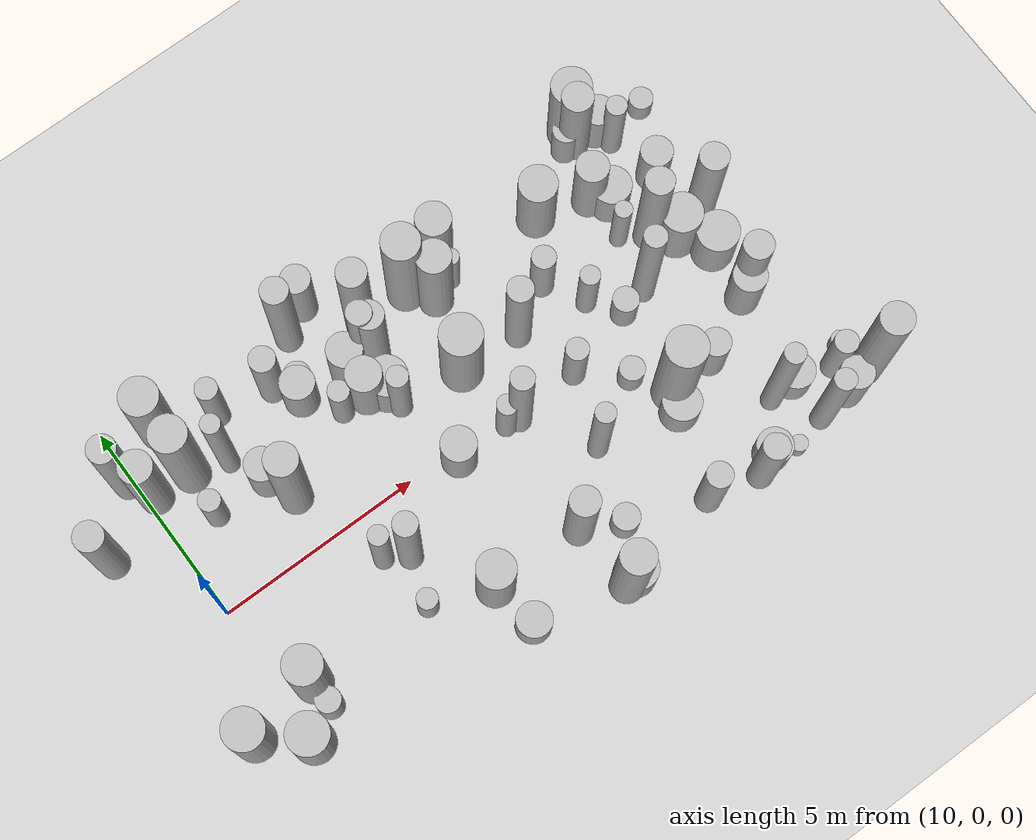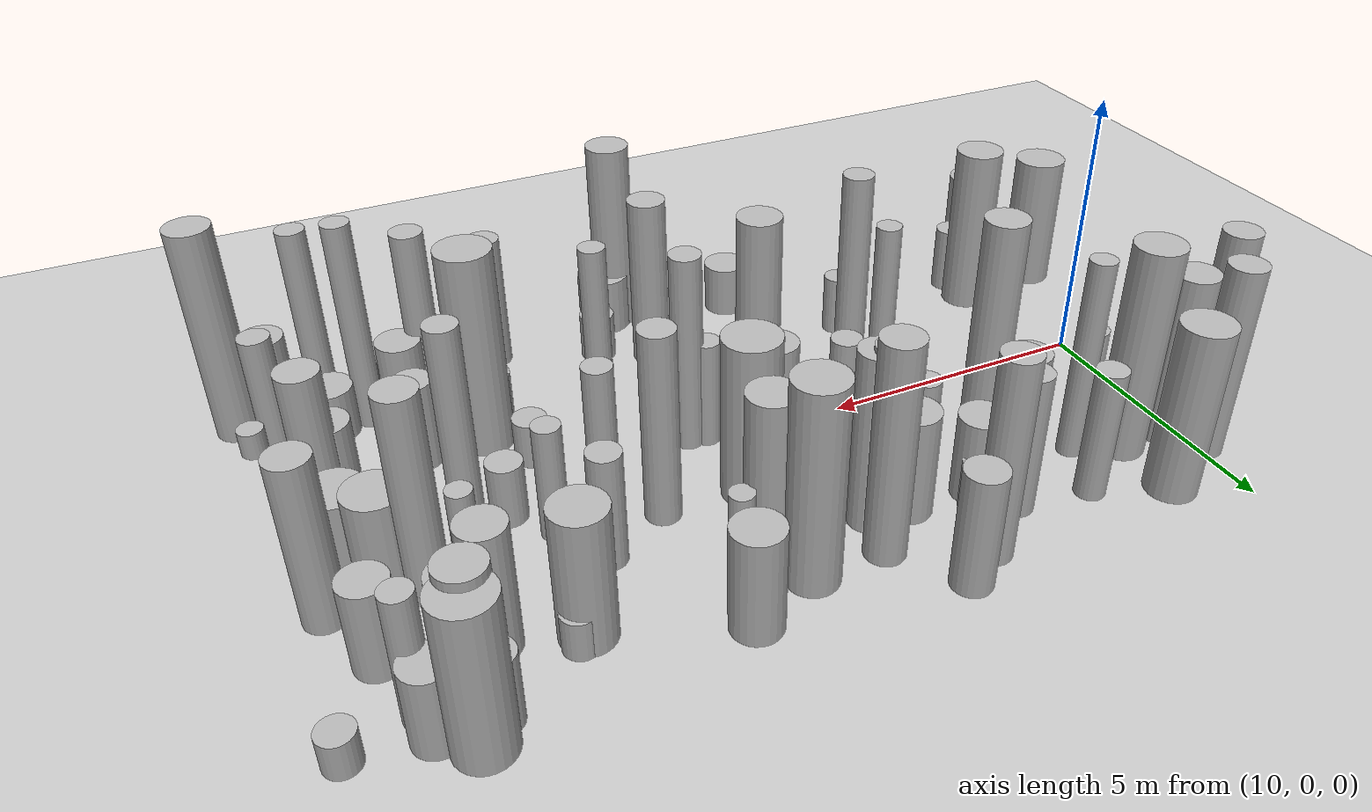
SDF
<sdf version="1.4">
 <world name="default">
  <include><uri>model://ground_plane</uri></include>
  <include><uri>model://sun</uri></include>
  <model name="forest">
   <static>true</static>
   <link name="cylinder0">
    <pose>20.96834527113682 -1.8330656644667185 1.8838990508222753 0 0 0</pose>
    <visual name="visual">
     <geometry>
      <cylinder><radius>0.4776604967879795</radius><length>3.7677981016445505</length></cylinder>
     </geometry>
    </visual>
    <collision name="collision">
     <geometry>
      <cylinder><radius>0.4776604967879795</radius><length>3.7677981016445505</length></cylinder>
     </geometry>
     <max_contacts>0</max_contacts>
    </collision>
   </link>
   <link name="cylinder4">
    <pose>23.599087777781456 -1.0351329412681909 0.8744894573423656 0 0 0</pose>
    <visual name="visual">
     <geometry>
      <cylinder><radius>0.396557973357214</radius><length>1.7489789146847312</length></cylinder>
     </geometry>
    </visual>
    <collision name="collision">
     <geometry>
      <cylinder><radius>0.396557973357214</radius><length>1.7489789146847312</length></cylinder>
     </geometry>
     <max_contacts>0</max_contacts>
    </collision>
   </link>
   <link name="cylinder5">
    <pose>15.412757055949108 4.757021105903103 1.0764915467931095 0 0 0</pose>
    <visual name="visual">
     <geometry>
      <cylinder><radius>0.34895275617329075</radius><length>2.152983093586219</length></cylinder>
     </geometry>
    </visual>
    <collision name="collision">
     <geometry>
      <cylinder><radius>0.34895275617329075</radius><length>2.152983093586219</length></cylinder>
     </geometry>
     <max_contacts>0</max_contacts>
    </collision>
   </link>
   <link name="cylinder6">
    <pose>15.371764462092166 2.155838014274546 1.015251472287274 0 0 0</pose>
    <visual name="visual">
     <geometry>
      <cylinder><radius>0.4205340897621195</radius><length>2.030502944574548</length></cylinder>
     </geometry>
    </visual>
    <collision name="collision">
     <geometry>
      <cylinder><radius>0.4205340897621195</radius><length>2.030502944574548</length></cylinder>
     </geometry>
     <max_contacts>0</max_contacts>
    </collision>
   </link>
   <link name="cylinder11">
    <pose>10.651312184794094 -2.3999264610514115 1.6351353151789219 0 0 0</pose>
    <visual name="visual">
     <geometry>
      <cylinder><radius>0.44567808759371785</radius><length>3.2702706303578437</length></cylinder>
     </geometry>
    </visual>
    <collision name="collision">
     <geometry>
      <cylinder><radius>0.44567808759371785</radius><length>3.2702706303578437</length></cylinder>
     </geometry>
     <max_contacts>0</max_contacts>
    </collision>
   </link>
   <link name="cylinder12">
    <pose>14.140751424714203 2.9823537584373385 0.7765425802694257 0 0 0</pose>
    <visual name="visual">
     <geometry>
      <cylinder><radius>0.40542205674459664</radius><length>1.5530851605388514</length></cylinder>
     </geometry>
    </visual>
    <collision name="collision">
     <geometry>
      <cylinder><radius>0.40542205674459664</radius><length>1.5530851605388514</length></cylinder>
     </geometry>
     <max_contacts>0</max_contacts>
    </collision>
   </link>
   <link name="cylinder13">
    <pose>21.859361293917495 -4.293344875597363 0.44309726379591274 0 0 0</pose>
    <visual name="visual">
     <geometry>
      <cylinder><radius>0.42186271372300277</radius><length>0.8861945275918255</length></cylinder>
     </geometry>
    </visual>
    <collision name="collision">
     <geometry>
      <cylinder><radius>0.42186271372300277</radius><length>0.8861945275918255</length></cylinder>
     </geometry>
     <max_contacts>0</max_contacts>
    </collision>
   </link>
   <link name="cylinder19">
    <pose>16.078526141087224 2.83666877780985 1.623034743778622 0 0 0</pose>
    <visual name="visual">
     <geometry>
      <cylinder><radius>0.3476683043780082</radius><length>3.246069487557244</length></cylinder>
     </geometry>
    </visual>
    <collision name="collision">
     <geometry>
      <cylinder><radius>0.3476683043780082</radius><length>3.246069487557244</length></cylinder>
     </geometry>
     <max_contacts>0</max_contacts>
    </collision>
   </link>
   <link name="cylinder20">
    <pose>23.361852879667993 4.180324200057687 0.7042002919071049 0 0 0</pose>
    <visual name="visual">
     <geometry>
      <cylinder><radius>0.37907809096489864</radius><length>1.4084005838142097</length></cylinder>
     </geometry>
    </visual>
    <collision name="collision">
     <geometry>
      <cylinder><radius>0.37907809096489864</radius><length>1.4084005838142097</length></cylinder>
     </geometry>
     <max_contacts>0</max_contacts>
    </collision>
   </link>
   <link name="cylinder26">
    <pose>24.665532515206635 -3.2151725143366505 0.24761049663770013 0 0 0</pose>
    <visual name="visual">
     <geometry>
      <cylinder><radius>0.2331962708873026</radius><length>0.49522099327540026</length></cylinder>
     </geometry>
    </visual>
    <collision name="collision">
     <geometry>
      <cylinder><radius>0.2331962708873026</radius><length>0.49522099327540026</length></cylinder>
     </geometry>
     <max_contacts>0</max_contacts>
    </collision>
   </link>
   <link name="cylinder34">
    <pose>15.25792517012706 -4.229375189393558 0.4910643464159582 0 0 0</pose>
    <visual name="visual">
     <geometry>
      <cylinder><radius>0.41456057884511044</radius><length>0.9821286928319164</length></cylinder>
     </geometry>
    </visual>
    <collision name="collision">
     <geometry>
      <cylinder><radius>0.41456057884511044</radius><length>0.9821286928319164</length></cylinder>
     </geometry>
     <max_contacts>0</max_contacts>
    </collision>
   </link>
   <link name="cylinder35">
    <pose>9.916403407554988 -3.455078577531471 1.0699396154413097 0 0 0</pose>
    <visual name="visual">
     <geometry>
      <cylinder><radius>0.4895244351235126</radius><length>2.1398792308826193</length></cylinder>
     </geometry>
    </visual>
    <collision name="collision">
     <geometry>
      <cylinder><radius>0.4895244351235126</radius><length>2.1398792308826193</length></cylinder>
     </geometry>
     <max_contacts>0</max_contacts>
    </collision>
   </link>
   <link name="cylinder42">
    <pose>22.515740052190843 4.260668662055249 0.6424772735031694 0 0 0</pose>
    <visual name="visual">
     <geometry>
      <cylinder><radius>0.3144780467212596</radius><length>1.2849545470063388</length></cylinder>
     </geometry>
    </visual>
    <collision name="collision">
     <geometry>
      <cylinder><radius>0.3144780467212596</radius><length>1.2849545470063388</length></cylinder>
     </geometry>
     <max_contacts>0</max_contacts>
    </collision>
   </link>
   <link name="cylinder47">
    <pose>20.960880622647927 3.29613990828315 1.1984671373985931 0 0 0</pose>
    <visual name="visual">
     <geometry>
      <cylinder><radius>0.45005492466763847</radius><length>2.3969342747971862</length></cylinder>
     </geometry>
    </visual>
    <collision name="collision">
     <geometry>
      <cylinder><radius>0.45005492466763847</radius><length>2.3969342747971862</length></cylinder>
     </geometry>
     <max_contacts>0</max_contacts>
    </collision>
   </link>
   <link name="cylinder52">
    <pose>8.912833237657999 -2.6606538914656475 1.3317041731425412 0 0 0</pose>
    <visual name="visual">
     <geometry>
      <cylinder><radius>0.47816389933437026</radius><length>2.6634083462850824</length></cylinder>
     </geometry>
    </visual>
    <collision name="collision">
     <geometry>
      <cylinder><radius>0.47816389933437026</radius><length>2.6634083462850824</length></cylinder>
     </geometry>
     <max_contacts>0</max_contacts>
    </collision>
   </link>
   <link name="cylinder54">
    <pose>24.812494946747982 -4.002325983138089 1.996545816668052 0 0 0</pose>
    <visual name="visual">
     <geometry>
      <cylinder><radius>0.3845929586289015</radius><length>3.993091633336104</length></cylinder>
     </geometry>
    </visual>
    <collision name="collision">
     <geometry>
      <cylinder><radius>0.3845929586289015</radius><length>3.993091633336104</length></cylinder>
     </geometry>
     <max_contacts>0</max_contacts>
    </collision>
   </link>
   <link name="cylinder57">
    <pose>20.671730951437397 0.9941188210773557 1.0494021777304767 0 0 0</pose>
    <visual name="visual">
     <geometry>
      <cylinder><radius>0.23454435223153525</radius><length>2.0988043554609535</length></cylinder>
     </geometry>
    </visual>
    <collision name="collision">
     <geometry>
      <cylinder><radius>0.23454435223153525</radius><length>2.0988043554609535</length></cylinder>
     </geometry>
     <max_contacts>0</max_contacts>
    </collision>
   </link>
   <link name="cylinder59">
    <pose>21.20969406814173 0.2955652560846689 0.5527866696691696 0 0 0</pose>
    <visual name="visual">
     <geometry>
      <cylinder><radius>0.3075421207363877</radius><length>1.1055733393383391</length></cylinder>
     </geometry>
    </visual>
    <collision name="collision">
     <geometry>
      <cylinder><radius>0.3075421207363877</radius><length>1.1055733393383391</length></cylinder>
     </geometry>
     <max_contacts>0</max_contacts>
    </collision>
   </link>
   <link name="cylinder60">
    <pose>21.889226632330043 0.4522090713417013 1.940199115371747 0 0 0</pose>
    <visual name="visual">
     <geometry>
      <cylinder><radius>0.26662985341586276</radius><length>3.880398230743494</length></cylinder>
     </geometry>
    </visual>
    <collision name="collision">
     <geometry>
      <cylinder><radius>0.26662985341586276</radius><length>3.880398230743494</length></cylinder>
     </geometry>
     <max_contacts>0</max_contacts>
    </collision>
   </link>
   <link name="cylinder62">
    <pose>12.46113262598842 1.9278681381600107 0.820351386576603 0 0 0</pose>
    <visual name="visual">
     <geometry>
      <cylinder><radius>0.39917872835598245</radius><length>1.640702773153206</length></cylinder>
     </geometry>
    </visual>
    <collision name="collision">
     <geometry>
      <cylinder><radius>0.39917872835598245</radius><length>1.640702773153206</length></cylinder>
     </geometry>
     <max_contacts>0</max_contacts>
    </collision>
   </link>
   <link name="cylinder64">
    <pose>23.774416207898035 2.551776331821407 0.7928464510793298 0 0 0</pose>
    <visual name="visual">
     <geometry>
      <cylinder><radius>0.3785299469800004</radius><length>1.5856929021586597</length></cylinder>
     </geometry>
    </visual>
    <collision name="collision">
     <geometry>
      <cylinder><radius>0.3785299469800004</radius><length>1.5856929021586597</length></cylinder>
     </geometry>
     <max_contacts>0</max_contacts>
    </collision>
   </link>
   <link name="cylinder65">
    <pose>22.21560902879758 1.7947395433089106 1.002087049920516 0 0 0</pose>
    <visual name="visual">
     <geometry>
      <cylinder><radius>0.2072965654626761</radius><length>2.004174099841032</length></cylinder>
     </geometry>
    </visual>
    <collision name="collision">
     <geometry>
      <cylinder><radius>0.2072965654626761</radius><length>2.004174099841032</length></cylinder>
     </geometry>
     <max_contacts>0</max_contacts>
    </collision>
   </link>
   <link name="cylinder67">
    <pose>19.431124389994913 -0.17708890974431846 1.0504100621950725 0 0 0</pose>
    <visual name="visual">
     <geometry>
      <cylinder><radius>0.26788737825701747</radius><length>2.100820124390145</length></cylinder>
     </geometry>
    </visual>
    <collision name="collision">
     <geometry>
      <cylinder><radius>0.26788737825701747</radius><length>2.100820124390145</length></cylinder>
     </geometry>
     <max_contacts>0</max_contacts>
    </collision>
   </link>
   <link name="cylinder81">
    <pose>20.11186959243407 1.938806779890843 1.0360317320758266 0 0 0</pose>
    <visual name="visual">
     <geometry>
      <cylinder><radius>0.28269669089537774</radius><length>2.072063464151653</length></cylinder>
     </geometry>
    </visual>
    <collision name="collision">
     <geometry>
      <cylinder><radius>0.28269669089537774</radius><length>2.072063464151653</length></cylinder>
     </geometry>
     <max_contacts>0</max_contacts>
    </collision>
   </link>
   <link name="cylinder82">
    <pose>24.25918216605914 -3.5209876316447875 1.0263778069098144 0 0 0</pose>
    <visual name="visual">
     <geometry>
      <cylinder><radius>0.27609513909367595</radius><length>2.052755613819629</length></cylinder>
     </geometry>
    </visual>
    <collision name="collision">
     <geometry>
      <cylinder><radius>0.27609513909367595</radius><length>2.052755613819629</length></cylinder>
     </geometry>
     <max_contacts>0</max_contacts>
    </collision>
   </link>
   <link name="cylinder83">
    <pose>18.966907809114694 1.3075050766581233 1.7557089396479162 0 0 0</pose>
    <visual name="visual">
     <geometry>
      <cylinder><radius>0.30451281037348954</radius><length>3.5114178792958324</length></cylinder>
     </geometry>
    </visual>
    <collision name="collision">
     <geometry>
      <cylinder><radius>0.30451281037348954</radius><length>3.5114178792958324</length></cylinder>
     </geometry>
     <max_contacts>0</max_contacts>
    </collision>
   </link>
   <link name="cylinder88">
    <pose>13.48762850743605 -1.070798751830584 1.4360413168927246 0 0 0</pose>
    <visual name="visual">
     <geometry>
      <cylinder><radius>0.23440285257273424</radius><length>2.8720826337854493</length></cylinder>
     </geometry>
    </visual>
    <collision name="collision">
     <geometry>
      <cylinder><radius>0.23440285257273424</radius><length>2.8720826337854493</length></cylinder>
     </geometry>
     <max_contacts>0</max_contacts>
    </collision>
   </link>
   <link name="cylinder90">
    <pose>14.73301092875409 4.338262694742593 1.8378489770257938 0 0 0</pose>
    <visual name="visual">
     <geometry>
      <cylinder><radius>0.3204598900029928</radius><length>3.6756979540515875</length></cylinder>
     </geometry>
    </visual>
    <collision name="collision">
     <geometry>
      <cylinder><radius>0.3204598900029928</radius><length>3.6756979540515875</length></cylinder>
     </geometry>
     <max_contacts>0</max_contacts>
    </collision>
   </link>
   <link name="cylinder93">
    <pose>12.421595035052121 3.800808972736476 1.2049492962238006 0 0 0</pose>
    <visual name="visual">
     <geometry>
      <cylinder><radius>0.26336484966202345</radius><length>2.4098985924476013</length></cylinder>
     </geometry>
    </visual>
    <collision name="collision">
     <geometry>
      <cylinder><radius>0.26336484966202345</radius><length>2.4098985924476013</length></cylinder>
     </geometry>
     <max_contacts>0</max_contacts>
    </collision>
   </link>
   <link name="cylinder99">
    <pose>23.83647285938465 -0.8034661330526696 1.447871330089927 0 0 0</pose>
    <visual name="visual">
     <geometry>
      <cylinder><radius>0.3496557820190463</radius><length>2.895742660179854</length></cylinder>
     </geometry>
    </visual>
    <collision name="collision">
     <geometry>
      <cylinder><radius>0.3496557820190463</radius><length>2.895742660179854</length></cylinder>
     </geometry>
     <max_contacts>0</max_contacts>
    </collision>
   </link>
   <link name="cylinder102">
    <pose>18.524006024574234 3.2665160891847496 0.8670781150907563 0 0 0</pose>
    <visual name="visual">
     <geometry>
      <cylinder><radius>0.20576172495890896</radius><length>1.7341562301815125</length></cylinder>
     </geometry>
    </visual>
    <collision name="collision">
     <geometry>
      <cylinder><radius>0.20576172495890896</radius><length>1.7341562301815125</length></cylinder>
     </geometry>
     <max_contacts>0</max_contacts>
    </collision>
   </link>
   <link name="cylinder104">
    <pose>13.65276268194917 -2.512169493709587 0.5801237906408758 0 0 0</pose>
    <visual name="visual">
     <geometry>
      <cylinder><radius>0.24784293589118667</radius><length>1.1602475812817516</length></cylinder>
     </geometry>
    </visual>
    <collision name="collision">
     <geometry>
      <cylinder><radius>0.24784293589118667</radius><length>1.1602475812817516</length></cylinder>
     </geometry>
     <max_contacts>0</max_contacts>
    </collision>
   </link>
   <link name="cylinder105">
    <pose>20.087673183752244 -4.272707932242906 1.2937616115200432 0 0 0</pose>
    <visual name="visual">
     <geometry>
      <cylinder><radius>0.30029825554276496</radius><length>2.5875232230400864</length></cylinder>
     </geometry>
    </visual>
    <collision name="collision">
     <geometry>
      <cylinder><radius>0.30029825554276496</radius><length>2.5875232230400864</length></cylinder>
     </geometry>
     <max_contacts>0</max_contacts>
    </collision>
   </link>
   <link name="cylinder106">
    <pose>20.790579526300093 -2.3107116602553113 0.515968621931586 0 0 0</pose>
    <visual name="visual">
     <geometry>
      <cylinder><radius>0.4522052166479336</radius><length>1.031937243863172</length></cylinder>
     </geometry>
    </visual>
    <collision name="collision">
     <geometry>
      <cylinder><radius>0.4522052166479336</radius><length>1.031937243863172</length></cylinder>
     </geometry>
     <max_contacts>0</max_contacts>
    </collision>
   </link>
   <link name="cylinder109">
    <pose>16.236907004914627 3.615181665917685 1.966793187870496 0 0 0</pose>
    <visual name="visual">
     <geometry>
      <cylinder><radius>0.3476543113434448</radius><length>3.933586375740992</length></cylinder>
     </geometry>
    </visual>
    <collision name="collision">
     <geometry>
      <cylinder><radius>0.3476543113434448</radius><length>3.933586375740992</length></cylinder>
     </geometry>
     <max_contacts>0</max_contacts>
    </collision>
   </link>
   <link name="cylinder110">
    <pose>21.36453451581584 -4.539301355390689 1.4452873677912157 0 0 0</pose>
    <visual name="visual">
     <geometry>
      <cylinder><radius>0.3044548254093685</radius><length>2.8905747355824314</length></cylinder>
     </geometry>
    </visual>
    <collision name="collision">
     <geometry>
      <cylinder><radius>0.3044548254093685</radius><length>2.8905747355824314</length></cylinder>
     </geometry>
     <max_contacts>0</max_contacts>
    </collision>
   </link>
   <link name="cylinder112">
    <pose>12.734495251852628 1.217216102082899 1.9496966208242075 0 0 0</pose>
    <visual name="visual">
     <geometry>
      <cylinder><radius>0.38599762271795157</radius><length>3.899393241648415</length></cylinder>
     </geometry>
    </visual>
    <collision name="collision">
     <geometry>
      <cylinder><radius>0.38599762271795157</radius><length>3.899393241648415</length></cylinder>
     </geometry>
     <max_contacts>0</max_contacts>
    </collision>
   </link>
   <link name="cylinder114">
    <pose>22.561821439815162 2.6065542125423775 0.6233286959056551 0 0 0</pose>
    <visual name="visual">
     <geometry>
      <cylinder><radius>0.4658265185807811</radius><length>1.2466573918113102</length></cylinder>
     </geometry>
    </visual>
    <collision name="collision">
     <geometry>
      <cylinder><radius>0.4658265185807811</radius><length>1.2466573918113102</length></cylinder>
     </geometry>
     <max_contacts>0</max_contacts>
    </collision>
   </link>
   <link name="cylinder116">
    <pose>24.564871127579863 4.053175347701522 0.3115307732861888 0 0 0</pose>
    <visual name="visual">
     <geometry>
      <cylinder><radius>0.28134973749634645</radius><length>0.6230615465723776</length></cylinder>
     </geometry>
    </visual>
    <collision name="collision">
     <geometry>
      <cylinder><radius>0.28134973749634645</radius><length>0.6230615465723776</length></cylinder>
     </geometry>
     <max_contacts>0</max_contacts>
    </collision>
   </link>
   <link name="cylinder118">
    <pose>22.753435048049646 4.252145582799509 1.4461645725317729 0 0 0</pose>
    <visual name="visual">
     <geometry>
      <cylinder><radius>0.3676521478345431</radius><length>2.8923291450635458</length></cylinder>
     </geometry>
    </visual>
    <collision name="collision">
     <geometry>
      <cylinder><radius>0.3676521478345431</radius><length>2.8923291450635458</length></cylinder>
     </geometry>
     <max_contacts>0</max_contacts>
    </collision>
   </link>
   <link name="cylinder123">
    <pose>18.717264328287143 4.171017626677493 0.9359662404080313 0 0 0</pose>
    <visual name="visual">
     <geometry>
      <cylinder><radius>0.4232640885682097</radius><length>1.8719324808160627</length></cylinder>
     </geometry>
    </visual>
    <collision name="collision">
     <geometry>
      <cylinder><radius>0.4232640885682097</radius><length>1.8719324808160627</length></cylinder>
     </geometry>
     <max_contacts>0</max_contacts>
    </collision>
   </link>
   <link name="cylinder124">
    <pose>17.338008266893958 -3.1232961693510495 1.6465486214609864 0 0 0</pose>
    <visual name="visual">
     <geometry>
      <cylinder><radius>0.34701308820979143</radius><length>3.2930972429219727</length></cylinder>
     </geometry>
    </visual>
    <collision name="collision">
     <geometry>
      <cylinder><radius>0.34701308820979143</radius><length>3.2930972429219727</length></cylinder>
     </geometry>
     <max_contacts>0</max_contacts>
    </collision>
   </link>
   <link name="cylinder130">
    <pose>8.6317427534417 2.3867087170648107 1.6556482800058565 0 0 0</pose>
    <visual name="visual">
     <geometry>
      <cylinder><radius>0.34549934801408944</radius><length>3.311296560011713</length></cylinder>
     </geometry>
    </visual>
    <collision name="collision">
     <geometry>
      <cylinder><radius>0.34549934801408944</radius><length>3.311296560011713</length></cylinder>
     </geometry>
     <max_contacts>0</max_contacts>
    </collision>
   </link>
   <link name="cylinder134">
    <pose>10.233742850863372 3.0621755443473226 1.6054789348307188 0 0 0</pose>
    <visual name="visual">
     <geometry>
      <cylinder><radius>0.38717081340746273</radius><length>3.2109578696614376</length></cylinder>
     </geometry>
    </visual>
    <collision name="collision">
     <geometry>
      <cylinder><radius>0.38717081340746273</radius><length>3.2109578696614376</length></cylinder>
     </geometry>
     <max_contacts>0</max_contacts>
    </collision>
   </link>
   <link name="cylinder138">
    <pose>14.304086112565201 3.304403253473078 0.45480320374717365 0 0 0</pose>
    <visual name="visual">
     <geometry>
      <cylinder><radius>0.31631642964658824</radius><length>0.9096064074943473</length></cylinder>
     </geometry>
    </visual>
    <collision name="collision">
     <geometry>
      <cylinder><radius>0.31631642964658824</radius><length>0.9096064074943473</length></cylinder>
     </geometry>
     <max_contacts>0</max_contacts>
    </collision>
   </link>
   <link name="cylinder139">
    <pose>15.365183228664016 2.869736512249375 0.9716254809585597 0 0 0</pose>
    <visual name="visual">
     <geometry>
      <cylinder><radius>0.4190980586610842</radius><length>1.9432509619171194</length></cylinder>
     </geometry>
    </visual>
    <collision name="collision">
     <geometry>
      <cylinder><radius>0.4190980586610842</radius><length>1.9432509619171194</length></cylinder>
     </geometry>
     <max_contacts>0</max_contacts>
    </collision>
   </link>
   <link name="cylinder141">
    <pose>22.1995572452441 2.9313797703226063 1.138081609278364 0 0 0</pose>
    <visual name="visual">
     <geometry>
      <cylinder><radius>0.3845140325830677</radius><length>2.276163218556728</length></cylinder>
     </geometry>
    </visual>
    <collision name="collision">
     <geometry>
      <cylinder><radius>0.3845140325830677</radius><length>2.276163218556728</length></cylinder>
     </geometry>
     <max_contacts>0</max_contacts>
    </collision>
   </link>
   <link name="cylinder148">
    <pose>15.086727475954113 -3.063709407890368 1.252465458666177 0 0 0</pose>
    <visual name="visual">
     <geometry>
      <cylinder><radius>0.4468092412784965</radius><length>2.504930917332354</length></cylinder>
     </geometry>
    </visual>
    <collision name="collision">
     <geometry>
      <cylinder><radius>0.4468092412784965</radius><length>2.504930917332354</length></cylinder>
     </geometry>
     <max_contacts>0</max_contacts>
    </collision>
   </link>
   <link name="cylinder149">
    <pose>17.80143566407567 -0.31877682737674906 1.834515156454897 0 0 0</pose>
    <visual name="visual">
     <geometry>
      <cylinder><radius>0.2747776731843065</radius><length>3.669030312909794</length></cylinder>
     </geometry>
    </visual>
    <collision name="collision">
     <geometry>
      <cylinder><radius>0.2747776731843065</radius><length>3.669030312909794</length></cylinder>
     </geometry>
     <max_contacts>0</max_contacts>
    </collision>
   </link>
   <link name="cylinder155">
    <pose>22.436407701036323 -4.524790909210086 0.22893800353159438 0 0 0</pose>
    <visual name="visual">
     <geometry>
      <cylinder><radius>0.20318787390744703</radius><length>0.45787600706318876</length></cylinder>
     </geometry>
    </visual>
    <collision name="collision">
     <geometry>
      <cylinder><radius>0.20318787390744703</radius><length>0.45787600706318876</length></cylinder>
     </geometry>
     <max_contacts>0</max_contacts>
    </collision>
   </link>
   <link name="cylinder156">
    <pose>23.283878879741046 1.012739126304636 0.8959887978385307 0 0 0</pose>
    <visual name="visual">
     <geometry>
      <cylinder><radius>0.48369591762694397</radius><length>1.7919775956770614</length></cylinder>
     </geometry>
    </visual>
    <collision name="collision">
     <geometry>
      <cylinder><radius>0.48369591762694397</radius><length>1.7919775956770614</length></cylinder>
     </geometry>
     <max_contacts>0</max_contacts>
    </collision>
   </link>
   <link name="cylinder161">
    <pose>17.969268523652815 3.086175345834137 1.6007465836302268 0 0 0</pose>
    <visual name="visual">
     <geometry>
      <cylinder><radius>0.40499724874139564</radius><length>3.2014931672604536</length></cylinder>
     </geometry>
    </visual>
    <collision name="collision">
     <geometry>
      <cylinder><radius>0.40499724874139564</radius><length>3.2014931672604536</length></cylinder>
     </geometry>
     <max_contacts>0</max_contacts>
    </collision>
   </link>
   <link name="cylinder162">
    <pose>15.826331825928307 1.9688424944788219 0.7180832980970632 0 0 0</pose>
    <visual name="visual">
     <geometry>
      <cylinder><radius>0.48430710029071466</radius><length>1.4361665961941263</length></cylinder>
     </geometry>
    </visual>
    <collision name="collision">
     <geometry>
      <cylinder><radius>0.48430710029071466</radius><length>1.4361665961941263</length></cylinder>
     </geometry>
     <max_contacts>0</max_contacts>
    </collision>
   </link>
   <link name="cylinder163">
    <pose>15.853762962343247 1.5279527481480928 1.3109038331539682 0 0 0</pose>
    <visual name="visual">
     <geometry>
      <cylinder><radius>0.25593477381826146</radius><length>2.6218076663079364</length></cylinder>
     </geometry>
    </visual>
    <collision name="collision">
     <geometry>
      <cylinder><radius>0.25593477381826146</radius><length>2.6218076663079364</length></cylinder>
     </geometry>
     <max_contacts>0</max_contacts>
    </collision>
   </link>
   <link name="cylinder164">
    <pose>23.29337741422041 -3.240534039170795 0.47681515556799275 0 0 0</pose>
    <visual name="visual">
     <geometry>
      <cylinder><radius>0.43368933953644373</radius><length>0.9536303111359855</length></cylinder>
     </geometry>
    </visual>
    <collision name="collision">
     <geometry>
      <cylinder><radius>0.43368933953644373</radius><length>0.9536303111359855</length></cylinder>
     </geometry>
     <max_contacts>0</max_contacts>
    </collision>
   </link>
   <link name="cylinder171">
    <pose>17.480855762364072 -0.25090293843037337 1.0008941932834703 0 0 0</pose>
    <visual name="visual">
     <geometry>
      <cylinder><radius>0.2429724953763903</radius><length>2.0017883865669406</length></cylinder>
     </geometry>
    </visual>
    <collision name="collision">
     <geometry>
      <cylinder><radius>0.2429724953763903</radius><length>2.0017883865669406</length></cylinder>
     </geometry>
     <max_contacts>0</max_contacts>
    </collision>
   </link>
   <link name="cylinder173">
    <pose>22.08511009157472 -1.7729221074271742 0.8136696582049566 0 0 0</pose>
    <visual name="visual">
     <geometry>
      <cylinder><radius>0.34027837910800646</radius><length>1.6273393164099133</length></cylinder>
     </geometry>
    </visual>
    <collision name="collision">
     <geometry>
      <cylinder><radius>0.34027837910800646</radius><length>1.6273393164099133</length></cylinder>
     </geometry>
     <max_contacts>0</max_contacts>
    </collision>
   </link>
   <link name="cylinder177">
    <pose>12.00071868716298 2.746978025393025 1.8587693580847267 0 0 0</pose>
    <visual name="visual">
     <geometry>
      <cylinder><radius>0.22693493192367659</radius><length>3.7175387161694533</length></cylinder>
     </geometry>
    </visual>
    <collision name="collision">
     <geometry>
      <cylinder><radius>0.22693493192367659</radius><length>3.7175387161694533</length></cylinder>
     </geometry>
     <max_contacts>0</max_contacts>
    </collision>
   </link>
   <link name="cylinder179">
    <pose>21.133658591633306 3.47057038257587 0.3489276848519652 0 0 0</pose>
    <visual name="visual">
     <geometry>
      <cylinder><radius>0.2865481974180084</radius><length>0.6978553697039304</length></cylinder>
     </geometry>
    </visual>
    <collision name="collision">
     <geometry>
      <cylinder><radius>0.2865481974180084</radius><length>0.6978553697039304</length></cylinder>
     </geometry>
     <max_contacts>0</max_contacts>
    </collision>
   </link>
   <link name="cylinder182">
    <pose>13.74917458535002 3.569910552302236 1.3040947632508955 0 0 0</pose>
    <visual name="visual">
     <geometry>
      <cylinder><radius>0.3060877542147193</radius><length>2.608189526501791</length></cylinder>
     </geometry>
    </visual>
    <collision name="collision">
     <geometry>
      <cylinder><radius>0.3060877542147193</radius><length>2.608189526501791</length></cylinder>
     </geometry>
     <max_contacts>0</max_contacts>
    </collision>
   </link>
   <link name="cylinder183">
    <pose>17.447852912970937 -4.751238373514454 1.8596983811309244 0 0 0</pose>
    <visual name="visual">
     <geometry><cylinder><radius>0.399670263722514</radius><length>3.719396762261849</length></cylinder></geometry>
    </visual>
    <collision name="collision">
     <geometry><cylinder><radius>0.399670263722514</radius><length>3.719396762261849</length></cylinder></geometry>
     <max_contacts>0</max_contacts>
    </collision>
   </link>
   <link name="cylinder184">
    <pose>9.882014038102348 3.683811674465092 1.7996539137174832 0 0 0</pose>
    <visual name="visual">
     <geometry>
      <cylinder><radius>0.3303155049917126</radius><length>3.5993078274349664</length></cylinder>
     </geometry>
    </visual>
    <collision name="collision">
     <geometry>
      <cylinder><radius>0.3303155049917126</radius><length>3.5993078274349664</length></cylinder>
     </geometry>
     <max_contacts>0</max_contacts>
    </collision>
   </link>
   <link name="cylinder187">
    <pose>22.78961546747204 1.4397111940268923 1.8262840609798447 0 0 0</pose>
    <visual name="visual">
     <geometry>
      <cylinder><radius>0.33625964532924346</radius><length>3.6525681219596895</length></cylinder>
     </geometry>
    </visual>
    <collision name="collision">
     <geometry>
      <cylinder><radius>0.33625964532924346</radius><length>3.6525681219596895</length></cylinder>
     </geometry>
     <max_contacts>0</max_contacts>
    </collision>
   </link>
   <link name="cylinder192">
    <pose>22.648243041807092 -3.311603941361473 1.9576589121654295 0 0 0</pose>
    <visual name="visual">
     <geometry>
      <cylinder><radius>0.24139976065466445</radius><length>3.915317824330859</length></cylinder>
     </geometry>
    </visual>
    <collision name="collision">
     <geometry>
      <cylinder><radius>0.24139976065466445</radius><length>3.915317824330859</length></cylinder>
     </geometry>
     <max_contacts>0</max_contacts>
    </collision>
   </link>
   <link name="cylinder199">
    <pose>11.165370623222564 3.038418804336583 1.9686476962531494 0 0 0</pose>
    <visual name="visual">
     <geometry>
      <cylinder><radius>0.42903894705331075</radius><length>3.937295392506299</length></cylinder>
     </geometry>
    </visual>
    <collision name="collision">
     <geometry>
      <cylinder><radius>0.42903894705331075</radius><length>3.937295392506299</length></cylinder>
     </geometry>
     <max_contacts>0</max_contacts>
    </collision>
   </link>
   <link name="cylinder205">
    <pose>23.27994247357455 -4.322254856478196 1.7298670808426857 0 0 0</pose>
    <visual name="visual">
     <geometry>
      <cylinder><radius>0.25305463275175955</radius><length>3.4597341616853714</length></cylinder>
     </geometry>
    </visual>
    <collision name="collision">
     <geometry>
      <cylinder><radius>0.25305463275175955</radius><length>3.4597341616853714</length></cylinder>
     </geometry>
     <max_contacts>0</max_contacts>
    </collision>
   </link>
   <link name="cylinder208">
    <pose>24.13945489147246 -4.160845134685891 0.8276539103782502 0 0 0</pose>
    <visual name="visual">
     <geometry>
      <cylinder><radius>0.3921327046083971</radius><length>1.6553078207565004</length></cylinder>
     </geometry>
    </visual>
    <collision name="collision">
     <geometry>
      <cylinder><radius>0.3921327046083971</radius><length>1.6553078207565004</length></cylinder>
     </geometry>
     <max_contacts>0</max_contacts>
    </collision>
   </link>
   <link name="cylinder211">
    <pose>11.146434418347567 4.286870716303028 1.5870396385172403 0 0 0</pose>
    <visual name="visual">
     <geometry>
      <cylinder><radius>0.4490800851026335</radius><length>3.1740792770344806</length></cylinder>
     </geometry>
    </visual>
    <collision name="collision">
     <geometry>
      <cylinder><radius>0.4490800851026335</radius><length>3.1740792770344806</length></cylinder>
     </geometry>
     <max_contacts>0</max_contacts>
    </collision>
   </link>
   <link name="cylinder212">
    <pose>23.49165568029995 3.7507745696449177 1.1553822405646605 0 0 0</pose>
    <visual name="visual">
     <geometry>
      <cylinder><radius>0.24352796876284666</radius><length>2.310764481129321</length></cylinder>
     </geometry>
    </visual>
    <collision name="collision">
     <geometry>
      <cylinder><radius>0.24352796876284666</radius><length>2.310764481129321</length></cylinder>
     </geometry>
     <max_contacts>0</max_contacts>
    </collision>
   </link>
   <link name="cylinder214">
    <pose>14.72548289537933 2.194991457150266 0.960992391772706 0 0 0</pose>
    <visual name="visual">
     <geometry>
      <cylinder><radius>0.2550158768813293</radius><length>1.921984783545412</length></cylinder>
     </geometry>
    </visual>
    <collision name="collision">
     <geometry>
      <cylinder><radius>0.2550158768813293</radius><length>1.921984783545412</length></cylinder>
     </geometry>
     <max_contacts>0</max_contacts>
    </collision>
   </link>
   <link name="cylinder218">
    <pose>20.40388804340369 -1.0086982458161131 0.4219071190091263 0 0 0</pose>
    <visual name="visual">
     <geometry>
      <cylinder><radius>0.29867286756328704</radius><length>0.8438142380182526</length></cylinder>
     </geometry>
    </visual>
    <collision name="collision">
     <geometry>
      <cylinder><radius>0.29867286756328704</radius><length>0.8438142380182526</length></cylinder>
     </geometry>
     <max_contacts>0</max_contacts>
    </collision>
   </link>
   <link name="cylinder220">
    <pose>18.241743655148 -3.61153740327946 0.4463335874178918 0 0 0</pose>
    <visual name="visual">
     <geometry>
      <cylinder><radius>0.3221033339003076</radius><length>0.8926671748357836</length></cylinder>
     </geometry>
    </visual>
    <collision name="collision">
     <geometry>
      <cylinder><radius>0.3221033339003076</radius><length>0.8926671748357836</length></cylinder>
     </geometry>
     <max_contacts>0</max_contacts>
    </collision>
   </link>
   <link name="cylinder221">
    <pose>11.096671846292445 1.9198306240564325 0.8655700434539857 0 0 0</pose>
    <visual name="visual">
     <geometry>
      <cylinder><radius>0.2598399910542479</radius><length>1.7311400869079714</length></cylinder>
     </geometry>
    </visual>
    <collision name="collision">
     <geometry>
      <cylinder><radius>0.2598399910542479</radius><length>1.7311400869079714</length></cylinder>
     </geometry>
     <max_contacts>0</max_contacts>
    </collision>
   </link>
   <link name="cylinder223">
    <pose>13.999600537952169 -1.3883111241228696 1.9221845732502776 0 0 0</pose>
    <visual name="visual">
     <geometry>
      <cylinder><radius>0.2819829695374668</radius><length>3.844369146500555</length></cylinder>
     </geometry>
    </visual>
    <collision name="collision">
     <geometry>
      <cylinder><radius>0.2819829695374668</radius><length>3.844369146500555</length></cylinder>
     </geometry>
     <max_contacts>0</max_contacts>
    </collision>
   </link>
   <link name="cylinder226">
    <pose>16.168191662268363 -0.24900519768543106 0.8089134390883356 0 0 0</pose>
    <visual name="visual">
     <geometry>
      <cylinder><radius>0.4151761434017374</radius><length>1.6178268781766711</length></cylinder>
     </geometry>
    </visual>
    <collision name="collision">
     <geometry>
      <cylinder><radius>0.4151761434017374</radius><length>1.6178268781766711</length></cylinder>
     </geometry>
     <max_contacts>0</max_contacts>
    </collision>
   </link>
   <link name="cylinder229">
    <pose>10.674332399568875 -3.023533530399275 0.6493121574985563 0 0 0</pose>
    <visual name="visual">
     <geometry>
      <cylinder><radius>0.2978005338381402</radius><length>1.2986243149971126</length></cylinder>
     </geometry>
    </visual>
    <collision name="collision">
     <geometry>
      <cylinder><radius>0.2978005338381402</radius><length>1.2986243149971126</length></cylinder>
     </geometry>
     <max_contacts>0</max_contacts>
    </collision>
   </link>
   <link name="cylinder230">
    <pose>18.82788448302597 -1.8728339450027578 1.6401735683611482 0 0 0</pose>
    <visual name="visual">
     <geometry>
      <cylinder><radius>0.23761056199172825</radius><length>3.2803471367222965</length></cylinder>
     </geometry>
    </visual>
    <collision name="collision">
     <geometry>
      <cylinder><radius>0.23761056199172825</radius><length>3.2803471367222965</length></cylinder>
     </geometry>
     <max_contacts>0</max_contacts>
    </collision>
   </link>
   <link name="cylinder231">
    <pose>17.44135345623043 1.3780476510558168 1.5032033939462512 0 0 0</pose>
    <visual name="visual">
     <geometry>
      <cylinder><radius>0.4960932870673568</radius><length>3.0064067878925025</length></cylinder>
     </geometry>
    </visual>
    <collision name="collision">
     <geometry>
      <cylinder><radius>0.4960932870673568</radius><length>3.0064067878925025</length></cylinder>
     </geometry>
     <max_contacts>0</max_contacts>
    </collision>
   </link>
   <link name="cylinder233">
    <pose>22.841972363334683 4.586263663433488 1.3694767180836986 0 0 0</pose>
    <visual name="visual">
     <geometry>
      <cylinder><radius>0.4721107448564978</radius><length>2.7389534361673973</length></cylinder>
     </geometry>
    </visual>
    <collision name="collision">
     <geometry>
      <cylinder><radius>0.4721107448564978</radius><length>2.7389534361673973</length></cylinder>
     </geometry>
     <max_contacts>0</max_contacts>
    </collision>
   </link>
   <link name="cylinder235">
    <pose>17.705353335183837 -4.675721640970761 0.550516595407805 0 0 0</pose>
    <visual name="visual">
     <geometry>
      <cylinder><radius>0.49516219369576153</radius><length>1.10103319081561</length></cylinder>
     </geometry>
    </visual>
    <collision name="collision">
     <geometry>
      <cylinder><radius>0.49516219369576153</radius><length>1.10103319081561</length></cylinder>
     </geometry>
     <max_contacts>0</max_contacts>
    </collision>
   </link>
   <link name="cylinder240">
    <pose>23.76509649756637 0.2696493371334814 0.7192533126662412 0 0 0</pose>
    <visual name="visual">
     <geometry>
      <cylinder><radius>0.4987688770470289</radius><length>1.4385066253324823</length></cylinder>
     </geometry>
    </visual>
    <collision name="collision">
     <geometry>
      <cylinder><radius>0.4987688770470289</radius><length>1.4385066253324823</length></cylinder>
     </geometry>
     <max_contacts>0</max_contacts>
    </collision>
   </link>
   <link name="cylinder241">
    <pose>17.521186345728616 3.639204385476896 1.8288248532045865 0 0 0</pose>
    <visual name="visual">
     <geometry><cylinder><radius>0.447680663002045</radius><length>3.657649706409173</length></cylinder></geometry>
    </visual>
    <collision name="collision">
     <geometry><cylinder><radius>0.447680663002045</radius><length>3.657649706409173</length></cylinder></geometry>
     <max_contacts>0</max_contacts>
    </collision>
   </link>
   <link name="cylinder242">
    <pose>15.925153352537016 2.9699220623046516 1.673313030684938 0 0 0</pose>
    <visual name="visual">
     <geometry>
      <cylinder><radius>0.2944560042257687</radius><length>3.346626061369876</length></cylinder>
     </geometry>
    </visual>
    <collision name="collision">
     <geometry>
      <cylinder><radius>0.2944560042257687</radius><length>3.346626061369876</length></cylinder>
     </geometry>
     <max_contacts>0</max_contacts>
    </collision>
   </link>
   <link name="cylinder248">
    <pose>24.29142234595281 1.347461458674756 1.4863221162146316 0 0 0</pose>
    <visual name="visual">
     <geometry>
      <cylinder><radius>0.3431240424748444</radius><length>2.9726442324292632</length></cylinder>
     </geometry>
    </visual>
    <collision name="collision">
     <geometry>
      <cylinder><radius>0.3431240424748444</radius><length>2.9726442324292632</length></cylinder>
     </geometry>
     <max_contacts>0</max_contacts>
    </collision>
   </link>
  </model>
 </world>
</sdf>
